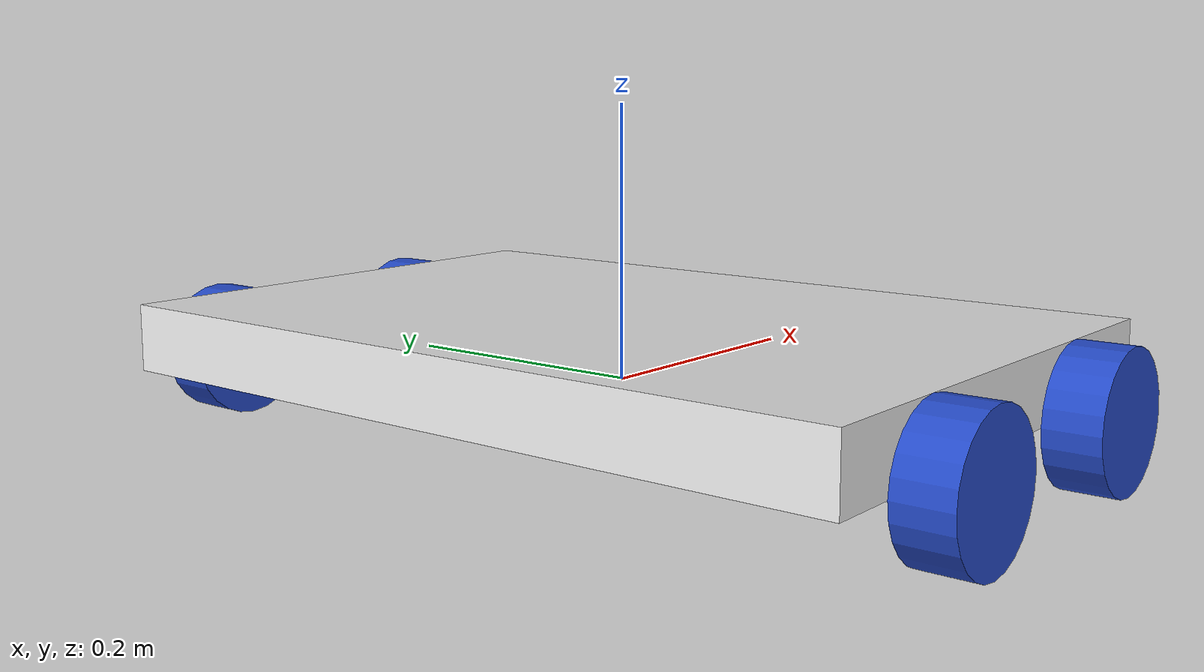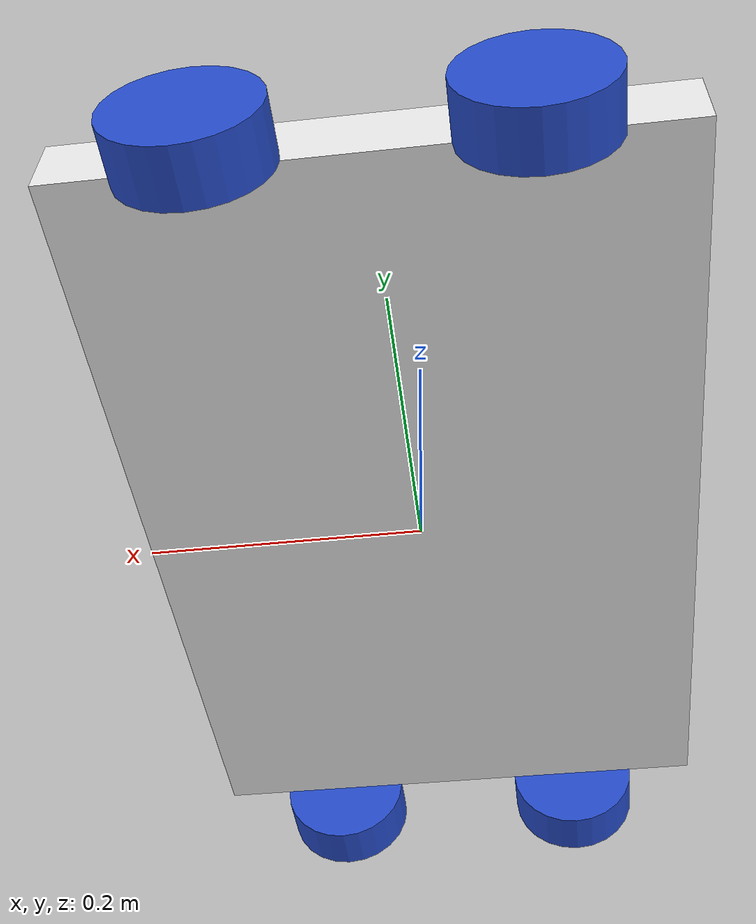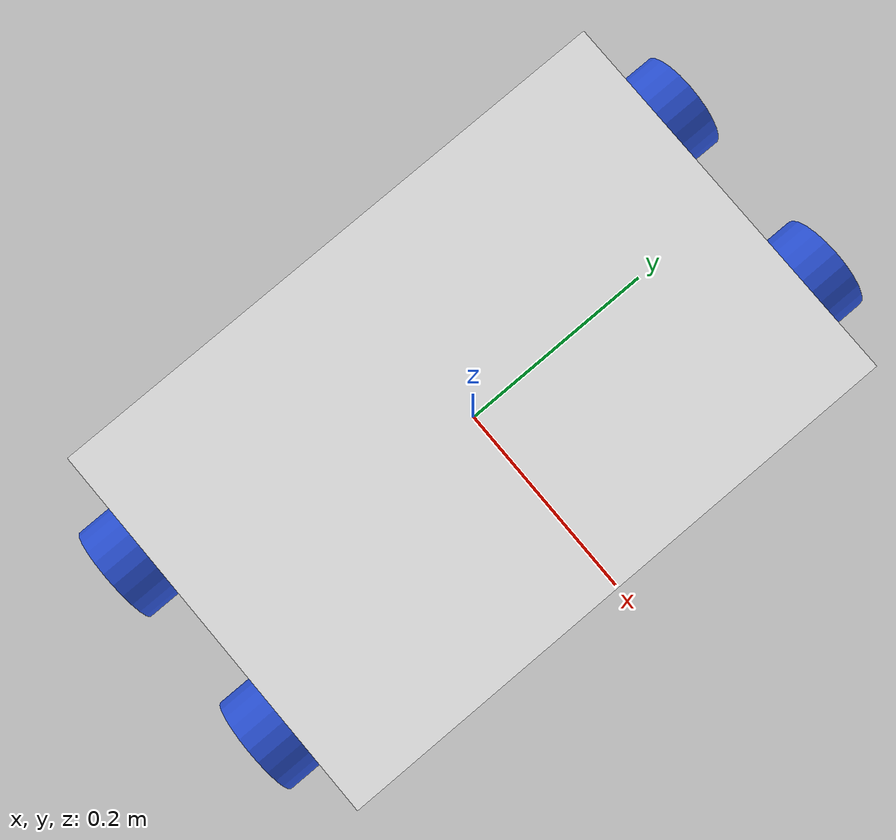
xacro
<?xml version="1.0"?>
<robot xmlns:xacro="http://www.ros.org/wiki/xacro">

    <!-- Example link -->
    <xacro:include filename="inertial_macros.xacro"/>

    <xacro:property name="rad_w" value="0.05"/>
    <xacro:property name="le_w" value="0.04"/>
    <xacro:property name="ly" value="0.6"/>
    <xacro:property name="lx" value="0.4"/>
    <xacro:property name="lz" value="0.05"/>

    <!-- Example link -->
    <link name="base_link">
    </link>

    <joint name="base_link" type="fixed">
        <parent link="base_link"/>
        <child link="chassis"/>
        <origin xyz="-0.2 0 0"/>
    </joint>

    <!-- chassis link -->
    <link name="chassis">
        <visual>
            <origin xyz="${lx/2} 0 ${lz/2}"/>
            <geometry>
                <box size="${lx} ${ly} ${lz}"/>
            </geometry>
            <material name="white"/>
        </visual>
        <collision>
            <origin xyz="${lx/2} 0 ${lz/2}"/>
            <geometry>
               <box size="${lx} ${ly} ${lz}"/>
            </geometry>
        </collision>
        <xacro:inertial_box mass="0.5" x="${lx}" y="${ly}" z="${lz}">
            <origin xyz="${lx/2} 0 ${lz/2}" rpy="0 0 0"/>
        </xacro:inertial_box>
    </link>

    <!-- left wheel joint -->
    <joint name="rear_left_wheel_joint" type="continuous">
        <parent link="chassis"/>
        <child link="rear_left_wheel"/>
        <origin xyz="0.1 ${ly/2+le_w/2} 0" rpy="-${pi/2} 0 0"/>
        <axis xyz="0 0 1"/>
    </joint>

    <!-- left wheel link -->
    <link name="rear_left_wheel">
        <visual>
            <geometry>
                <cylinder radius="${rad_w}" length="${le_w}"/>
            </geometry>
            <material name="blue"/>
        </visual>
        <collision>
            <geometry>
                <cylinder radius="${rad_w}" length="${le_w}"/>
            </geometry>
        </collision>
        <xacro:inertial_cylinder mass="0.1" length="${le_w}" radius="${rad_w}">
            <origin xyz="0 0 0" rpy="0 0 0"/>
        </xacro:inertial_cylinder>
    </link>

    <!-- right wheel joint -->
    <joint name="rear_right_wheel_joint" type="continuous">
        <parent link="chassis"/>
        <child link="rear_right_wheel"/>
        <origin xyz="0.1 -${ly/2+le_w/2} 0" rpy="${pi/2} 0 0"/>
        <axis xyz="0 0 -1"/>
    </joint>

    <!-- right wheel link -->
    <link name="rear_right_wheel">
        <visual>
            <geometry>
                <cylinder radius="${rad_w}" length="${le_w}"/>
            </geometry>
            <material name="blue"/>
        </visual>
        <collision>
            <geometry>
                <cylinder radius="${rad_w}" length="${le_w}"/>
            </geometry>
        </collision>
        <xacro:inertial_cylinder mass="0.1" length="${le_w}" radius="${rad_w}">
            <origin xyz="0 0 0" rpy="0 0 0"/>
        </xacro:inertial_cylinder>
    </link>

    <!-- front left wheel joint -->
    <joint name="front_left_wheel_joint" type="continuous">
        <parent link="chassis"/>
        <child link="front_left_wheel"/>
        <origin xyz="${lx-0.1} ${ly/2+le_w/2} 0" rpy="-${pi/2} 0 0"/>
        <axis xyz="0 0 1"/>
    </joint>

    <!-- left wheel link -->
    <link name="front_left_wheel">
        <visual>
            <geometry>
                <cylinder radius="${rad_w}" length="${le_w}"/>
            </geometry>
            <material name="blue"/>
        </visual>
        <collision>
            <geometry>
                <cylinder radius="${rad_w}" length="${le_w}"/>
            </geometry>
        </collision>
        <xacro:inertial_cylinder mass="0.1" length="${le_w}" radius="${rad_w}">
            <origin xyz="0 0 0" rpy="0 0 0"/>
        </xacro:inertial_cylinder>
    </link>

    <!-- right wheel joint -->
    <joint name="front_right_wheel_joint" type="continuous">
        <parent link="chassis"/>
        <child link="front_right_wheel"/>
        <origin xyz="${lx-0.1} -${ly/2+le_w/2} 0" rpy="${pi/2} 0 0"/>
        <axis xyz="0 0 -1"/>
    </joint>

    <!-- right wheel link -->
    <link name="front_right_wheel">
        <visual>
            <geometry>
                <cylinder radius="${rad_w}" length="${le_w}"/>
            </geometry>
            <material name="blue"/>
        </visual>
        <collision>
            <geometry>
                <cylinder radius="${rad_w}" length="${le_w}"/>
            </geometry>
        </collision>
        <xacro:inertial_cylinder mass="0.1" length="${le_w}" radius="${rad_w}">
            <origin xyz="0 0 0" rpy="0 0 0"/>
        </xacro:inertial_cylinder>
    </link>

</robot>
